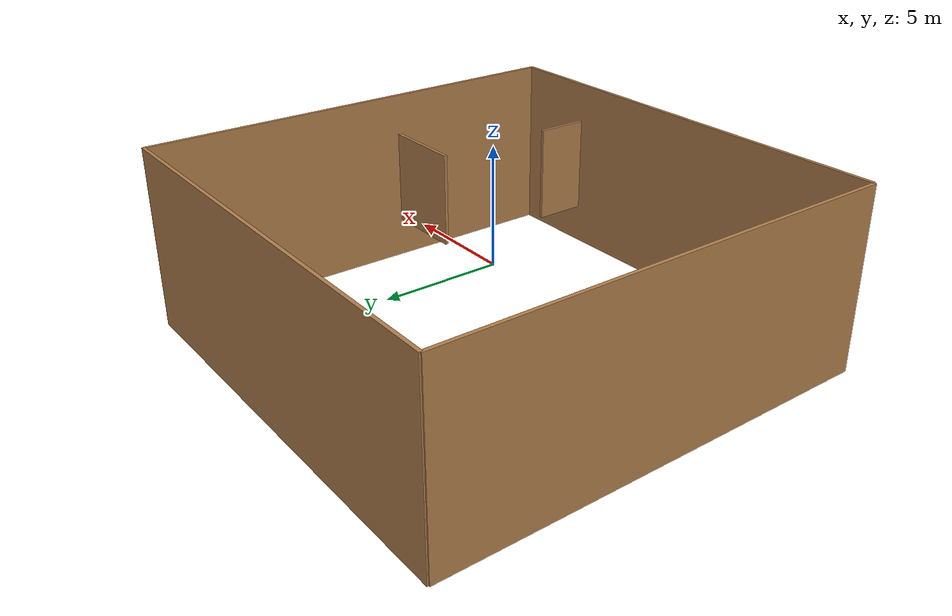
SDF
<?xml version='1.0'?>
<sdf version='1.6'>
  <model name='turtlebot3_square'>
    <link name='Wall_0'>
      <pose frame=''>0 10 0 0 -0 0</pose>
      <self_collide>0</self_collide>
      <enable_wind>0</enable_wind>
      <kinematic>0</kinematic>
      <gravity>1</gravity>
      <inertial>
        <mass>80.6884</mass>
        <pose frame=''>0 0 0 0 -0 0</pose>
        <inertia>
          <ixx>436.432</ixx>
          <ixy>0</ixy>
          <ixz>0</ixz>
          <iyy>3135.13</iyy>
          <iyz>0</iyz>
          <izz>2699</izz>
        </inertia>
      </inertial>
      <visual name='Wall_0_Visual'>
        <pose frame=''>0 0 0.25 0 -0 0</pose>
        <geometry>
          <box>
            <size>20.0343 0.15 8.05505</size>
          </box>
        </geometry>
        <material>
          <script>
            <uri>file://media/materials/scripts/gazebo.material</uri>
            <name>Gazebo/Wood</name>
          </script>
          <ambient>1 1 1 1</ambient>
          <shader type='vertex'>
            <normal_map>__default__</normal_map>
          </shader>
          <diffuse>1 1 1 1</diffuse>
          <specular>0.2 0.2 0.2 1</specular>
          <emissive>0 0 0 1</emissive>
        </material>
        <transparency>0</transparency>
        <cast_shadows>1</cast_shadows>
      </visual>
      <collision name='Wall_0_Collision'>
        <laser_retro>0</laser_retro>
        <max_contacts>10</max_contacts>
        <pose frame=''>0 0 0.25 0 -0 0</pose>
        <geometry>
          <box>
            <size>20.0343 0.15 8.05505</size>
          </box>
        </geometry>
        <surface>
          <friction>
            <ode>
              <mu>1</mu>
              <mu2>1</mu2>
              <fdir1>0 0 0</fdir1>
              <slip1>0</slip1>
              <slip2>0</slip2>
            </ode>
            <torsional>
              <coefficient>1</coefficient>
              <patch_radius>0</patch_radius>
              <surface_radius>0</surface_radius>
              <use_patch_radius>1</use_patch_radius>
              <ode>
                <slip>0</slip>
              </ode>
            </torsional>
          </friction>
          <bounce>
            <restitution_coefficient>0</restitution_coefficient>
            <threshold>1e+06</threshold>
          </bounce>
          <contact>
            <collide_without_contact>0</collide_without_contact>
            <collide_without_contact_bitmask>1</collide_without_contact_bitmask>
            <collide_bitmask>1</collide_bitmask>
            <ode>
              <soft_cfm>0</soft_cfm>
              <soft_erp>0.2</soft_erp>
              <kp>1e+13</kp>
              <kd>1</kd>
              <max_vel>0.01</max_vel>
              <min_depth>0</min_depth>
            </ode>
            <bullet>
              <split_impulse>1</split_impulse>
              <split_impulse_penetration_threshold>-0.01</split_impulse_penetration_threshold>
              <soft_cfm>0</soft_cfm>
              <soft_erp>0.2</soft_erp>
              <kp>1e+13</kp>
              <kd>1</kd>
            </bullet>
          </contact>
        </surface>
      </collision>
    </link>
    <link name='Wall_2'>
      <pose frame=''>-10 0 0 0 0 -1.5708</pose>
      <self_collide>0</self_collide>
      <enable_wind>0</enable_wind>
      <kinematic>0</kinematic>
      <inertial>
        <inertia>
          <ixx>0</ixx>
          <ixy>0</ixy>
          <ixz>0</ixz>
          <iyy>0</iyy>
          <iyz>0</iyz>
          <izz>0</izz>
        </inertia>
        <mass>0</mass>
        <pose frame=''>0 0 0 0 -0 0</pose>
      </inertial>
      <gravity>1</gravity>
      <visual name='Wall_2_Visual'>
        <pose frame=''>0 0 0.25 0 -0 0</pose>
        <geometry>
          <box>
            <size>20.0239 0.15 8.04733</size>
          </box>
        </geometry>
        <material>
          <script>
            <uri>file://media/materials/scripts/gazebo.material</uri>
            <name>Gazebo/Wood</name>
          </script>
          <ambient>1 1 1 1</ambient>
          <shader type='vertex'>
            <normal_map>__default__</normal_map>
          </shader>
          <diffuse>1 1 1 1</diffuse>
          <specular>0.2 0.2 0.2 1</specular>
          <emissive>0 0 0 1</emissive>
        </material>
        <transparency>0</transparency>
        <cast_shadows>1</cast_shadows>
      </visual>
      <collision name='Wall_2_Collision'>
        <laser_retro>0</laser_retro>
        <max_contacts>10</max_contacts>
        <pose frame=''>0 0 0.25 0 -0 0</pose>
        <geometry>
          <box>
            <size>20.0239 0.15 8.04733</size>
          </box>
        </geometry>
        <surface>
          <friction>
            <ode>
              <mu>1</mu>
              <mu2>1</mu2>
              <fdir1>0 0 0</fdir1>
              <slip1>0</slip1>
              <slip2>0</slip2>
            </ode>
            <torsional>
              <coefficient>1</coefficient>
              <patch_radius>0</patch_radius>
              <surface_radius>0</surface_radius>
              <use_patch_radius>1</use_patch_radius>
              <ode>
                <slip>0</slip>
              </ode>
            </torsional>
          </friction>
          <bounce>
            <restitution_coefficient>0</restitution_coefficient>
            <threshold>1e+06</threshold>
          </bounce>
          <contact>
            <collide_without_contact>0</collide_without_contact>
            <collide_without_contact_bitmask>1</collide_without_contact_bitmask>
            <collide_bitmask>1</collide_bitmask>
            <ode>
              <soft_cfm>0</soft_cfm>
              <soft_erp>0.2</soft_erp>
              <kp>1e+13</kp>
              <kd>1</kd>
              <max_vel>0.01</max_vel>
              <min_depth>0</min_depth>
            </ode>
            <bullet>
              <split_impulse>1</split_impulse>
              <split_impulse_penetration_threshold>-0.01</split_impulse_penetration_threshold>
              <soft_cfm>0</soft_cfm>
              <soft_erp>0.2</soft_erp>
              <kp>1e+13</kp>
              <kd>1</kd>
            </bullet>
          </contact>
        </surface>
      </collision>
    </link>
    <link name='Wall_3'>
      <pose frame=''>0 -10 0 0 -0 0</pose>
      <self_collide>0</self_collide>
      <enable_wind>0</enable_wind>
      <kinematic>0</kinematic>
      <inertial>
        <inertia>
          <ixx>0</ixx>
          <ixy>0</ixy>
          <ixz>0</ixz>
          <iyy>0</iyy>
          <iyz>0</iyz>
          <izz>0</izz>
        </inertia>
        <mass>0</mass>
        <pose frame=''>0 0 0 0 -0 0</pose>
      </inertial>
      <gravity>1</gravity>
      <visual name='Wall_3_Visual'>
        <pose frame=''>0 0 0.25 0 -0 0</pose>
        <geometry>
          <box>
            <size>19.957 0.15 8.07772</size>
          </box>
        </geometry>
        <material>
          <script>
            <uri>file://media/materials/scripts/gazebo.material</uri>
            <name>Gazebo/Wood</name>
          </script>
          <ambient>1 1 1 1</ambient>
          <shader type='vertex'>
            <normal_map>__default__</normal_map>
          </shader>
          <diffuse>1 1 1 1</diffuse>
          <specular>0.2 0.2 0.2 1</specular>
          <emissive>0 0 0 1</emissive>
        </material>
        <transparency>0</transparency>
        <cast_shadows>1</cast_shadows>
      </visual>
      <collision name='Wall_3_Collision'>
        <laser_retro>0</laser_retro>
        <max_contacts>10</max_contacts>
        <pose frame=''>0 0 0.25 0 -0 0</pose>
        <geometry>
          <box>
            <size>19.957 0.15 8.07772</size>
          </box>
        </geometry>
        <surface>
          <friction>
            <ode>
              <mu>1</mu>
              <mu2>1</mu2>
              <fdir1>0 0 0</fdir1>
              <slip1>0</slip1>
              <slip2>0</slip2>
            </ode>
            <torsional>
              <coefficient>1</coefficient>
              <patch_radius>0</patch_radius>
              <surface_radius>0</surface_radius>
              <use_patch_radius>1</use_patch_radius>
              <ode>
                <slip>0</slip>
              </ode>
            </torsional>
          </friction>
          <bounce>
            <restitution_coefficient>0</restitution_coefficient>
            <threshold>1e+06</threshold>
          </bounce>
          <contact>
            <collide_without_contact>0</collide_without_contact>
            <collide_without_contact_bitmask>1</collide_without_contact_bitmask>
            <collide_bitmask>1</collide_bitmask>
            <ode>
              <soft_cfm>0</soft_cfm>
              <soft_erp>0.2</soft_erp>
              <kp>1e+13</kp>
              <kd>1</kd>
              <max_vel>0.01</max_vel>
              <min_depth>0</min_depth>
            </ode>
            <bullet>
              <split_impulse>1</split_impulse>
              <split_impulse_penetration_threshold>-0.01</split_impulse_penetration_threshold>
              <soft_cfm>0</soft_cfm>
              <soft_erp>0.2</soft_erp>
              <kp>1e+13</kp>
              <kd>1</kd>
            </bullet>
          </contact>
        </surface>
      </collision>
    </link>
    <link name='Wall_3_clone'>
      <pose frame=''>8.05609 -1.99223 0 0 -0 0</pose>
      <self_collide>0</self_collide>
      <enable_wind>0</enable_wind>
      <kinematic>0</kinematic>
      <inertial>
        <inertia>
          <ixx>0</ixx>
          <ixy>0</ixy>
          <ixz>0</ixz>
          <iyy>0</iyy>
          <iyz>0</iyz>
          <izz>0</izz>
        </inertia>
        <mass>0</mass>
        <pose frame=''>0 0 0 0 -0 0</pose>
      </inertial>
      <gravity>1</gravity>
      <visual name='Wall_3_Visual'>
        <pose frame=''>0 0 0.25 0 -0 0</pose>
        <geometry>
          <box>
            <size>3.80828 0.15 4.33301</size>
          </box>
        </geometry>
        <material>
          <script>
            <uri>file://media/materials/scripts/gazebo.material</uri>
            <name>Gazebo/Wood</name>
          </script>
          <ambient>1 1 1 1</ambient>
          <shader type='vertex'>
            <normal_map>__default__</normal_map>
          </shader>
          <diffuse>1 1 1 1</diffuse>
          <specular>0.2 0.2 0.2 1</specular>
          <emissive>0 0 0 1</emissive>
        </material>
        <transparency>0</transparency>
        <cast_shadows>1</cast_shadows>
      </visual>
      <collision name='Wall_3_Collision'>
        <laser_retro>0</laser_retro>
        <max_contacts>10</max_contacts>
        <pose frame=''>0 0 0.25 0 -0 0</pose>
        <geometry>
          <box>
            <size>3.80828 0.15 4.33301</size>
          </box>
        </geometry>
        <surface>
          <friction>
            <ode>
              <mu>1</mu>
              <mu2>1</mu2>
              <fdir1>0 0 0</fdir1>
              <slip1>0</slip1>
              <slip2>0</slip2>
            </ode>
            <torsional>
              <coefficient>1</coefficient>
              <patch_radius>0</patch_radius>
              <surface_radius>0</surface_radius>
              <use_patch_radius>1</use_patch_radius>
              <ode>
                <slip>0</slip>
              </ode>
            </torsional>
          </friction>
          <bounce>
            <restitution_coefficient>0</restitution_coefficient>
            <threshold>1e+06</threshold>
          </bounce>
          <contact>
            <collide_without_contact>0</collide_without_contact>
            <collide_without_contact_bitmask>1</collide_without_contact_bitmask>
            <collide_bitmask>1</collide_bitmask>
            <ode>
              <soft_cfm>0</soft_cfm>
              <soft_erp>0.2</soft_erp>
              <kp>1e+13</kp>
              <kd>1</kd>
              <max_vel>0.01</max_vel>
              <min_depth>0</min_depth>
            </ode>
            <bullet>
              <split_impulse>1</split_impulse>
              <split_impulse_penetration_threshold>-0.01</split_impulse_penetration_threshold>
              <soft_cfm>0</soft_cfm>
              <soft_erp>0.2</soft_erp>
              <kp>1e+13</kp>
              <kd>1</kd>
            </bullet>
          </contact>
        </surface>
      </collision>
    </link>
    <link name='Wall_4'>
      <pose frame=''>10 0 0 0 -0 1.5708</pose>
      <self_collide>0</self_collide>
      <enable_wind>0</enable_wind>
      <kinematic>0</kinematic>
      <gravity>1</gravity>
      <inertial>
        <mass>80.3784</mass>
        <pose frame=''>0 0 0 0 -0 0</pose>
        <inertia>
          <ixx>434.631</ixx>
          <ixy>0</ixy>
          <ixz>0</ixz>
          <iyy>3103.13</iyy>
          <iyz>0</iyz>
          <izz>2668.8</izz>
        </inertia>
      </inertial>
      <visual name='Wall_4_Visual'>
        <pose frame=''>0 0 0.25 0 -0 0</pose>
        <geometry>
          <box>
            <size>19.9603 0.15 8.0539</size>
          </box>
        </geometry>
        <material>
          <script>
            <uri>file://media/materials/scripts/gazebo.material</uri>
            <name>Gazebo/Wood</name>
          </script>
          <ambient>1 1 1 1</ambient>
          <shader type='vertex'>
            <normal_map>__default__</normal_map>
          </shader>
          <diffuse>1 1 1 1</diffuse>
          <specular>0.2 0.2 0.2 1</specular>
          <emissive>0 0 0 1</emissive>
        </material>
        <transparency>0</transparency>
        <cast_shadows>1</cast_shadows>
      </visual>
      <collision name='Wall_4_Collision'>
        <laser_retro>0</laser_retro>
        <max_contacts>10</max_contacts>
        <pose frame=''>0 0 0.25 0 -0 0</pose>
        <geometry>
          <box>
            <size>19.9603 0.15 8.0539</size>
          </box>
        </geometry>
        <surface>
          <friction>
            <ode>
              <mu>1</mu>
              <mu2>1</mu2>
              <fdir1>0 0 0</fdir1>
              <slip1>0</slip1>
              <slip2>0</slip2>
            </ode>
            <torsional>
              <coefficient>1</coefficient>
              <patch_radius>0</patch_radius>
              <surface_radius>0</surface_radius>
              <use_patch_radius>1</use_patch_radius>
              <ode>
                <slip>0</slip>
              </ode>
            </torsional>
          </friction>
          <bounce>
            <restitution_coefficient>0</restitution_coefficient>
            <threshold>1e+06</threshold>
          </bounce>
          <contact>
            <collide_without_contact>0</collide_without_contact>
            <collide_without_contact_bitmask>1</collide_without_contact_bitmask>
            <collide_bitmask>1</collide_bitmask>
            <ode>
              <soft_cfm>0</soft_cfm>
              <soft_erp>0.2</soft_erp>
              <kp>1e+13</kp>
              <kd>1</kd>
              <max_vel>0.01</max_vel>
              <min_depth>0</min_depth>
            </ode>
            <bullet>
              <split_impulse>1</split_impulse>
              <split_impulse_penetration_threshold>-0.01</split_impulse_penetration_threshold>
              <soft_cfm>0</soft_cfm>
              <soft_erp>0.2</soft_erp>
              <kp>1e+13</kp>
              <kd>1</kd>
            </bullet>
          </contact>
        </surface>
      </collision>
    </link>
    <link name='Wall_4_clone'>
      <pose frame=''>6.09188 -8.7062 0 0 -0 1.5708</pose>
      <self_collide>0</self_collide>
      <enable_wind>0</enable_wind>
      <kinematic>0</kinematic>
      <gravity>1</gravity>
      <inertial>
        <mass>5.26565</mass>
        <pose frame=''>0 0 0 0 -0 0</pose>
        <inertia>
          <ixx>8.64084</ixx>
          <ixy>0</ixy>
          <ixz>0</ixz>
          <iyy>11.105</iyy>
          <iyz>0</iyz>
          <izz>2.48394</izz>
        </inertia>
      </inertial>
      <visual name='Wall_4_Visual'>
        <pose frame=''>0 0 0.25 0 -0 0</pose>
        <geometry>
          <box>
            <size>2.37449 0.15 4.43501</size>
          </box>
        </geometry>
        <material>
          <script>
            <uri>file://media/materials/scripts/gazebo.material</uri>
            <name>Gazebo/Wood</name>
          </script>
          <ambient>1 1 1 1</ambient>
          <shader type='vertex'>
            <normal_map>__default__</normal_map>
          </shader>
          <diffuse>1 1 1 1</diffuse>
          <specular>0.2 0.2 0.2 1</specular>
          <emissive>0 0 0 1</emissive>
        </material>
        <transparency>0</transparency>
        <cast_shadows>1</cast_shadows>
      </visual>
      <collision name='Wall_4_Collision'>
        <laser_retro>0</laser_retro>
        <max_contacts>10</max_contacts>
        <pose frame=''>0 0 0.25 0 -0 0</pose>
        <geometry>
          <box>
            <size>2.37449 0.15 4.43501</size>
          </box>
        </geometry>
        <surface>
          <friction>
            <ode>
              <mu>1</mu>
              <mu2>1</mu2>
              <fdir1>0 0 0</fdir1>
              <slip1>0</slip1>
              <slip2>0</slip2>
            </ode>
            <torsional>
              <coefficient>1</coefficient>
              <patch_radius>0</patch_radius>
              <surface_radius>0</surface_radius>
              <use_patch_radius>1</use_patch_radius>
              <ode>
                <slip>0</slip>
              </ode>
            </torsional>
          </friction>
          <bounce>
            <restitution_coefficient>0</restitution_coefficient>
            <threshold>1e+06</threshold>
          </bounce>
          <contact>
            <collide_without_contact>0</collide_without_contact>
            <collide_without_contact_bitmask>1</collide_without_contact_bitmask>
            <collide_bitmask>1</collide_bitmask>
            <ode>
              <soft_cfm>0</soft_cfm>
              <soft_erp>0.2</soft_erp>
              <kp>1e+13</kp>
              <kd>1</kd>
              <max_vel>0.01</max_vel>
              <min_depth>0</min_depth>
            </ode>
            <bullet>
              <split_impulse>1</split_impulse>
              <split_impulse_penetration_threshold>-0.01</split_impulse_penetration_threshold>
              <soft_cfm>0</soft_cfm>
              <soft_erp>0.2</soft_erp>
              <kp>1e+13</kp>
              <kd>1</kd>
            </bullet>
          </contact>
        </surface>
      </collision>
    </link>
    <static>1</static>
    <allow_auto_disable>1</allow_auto_disable>
  </model>
</sdf>
